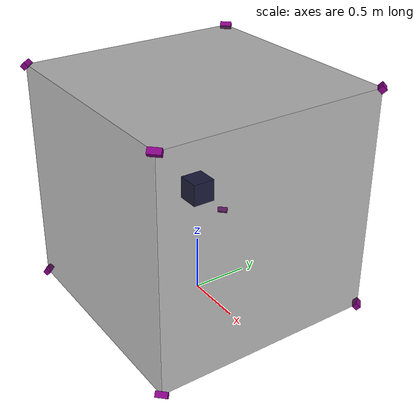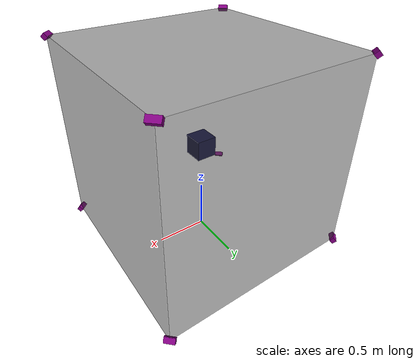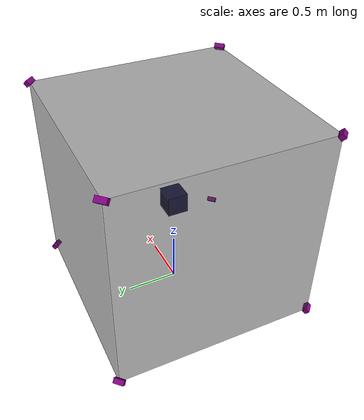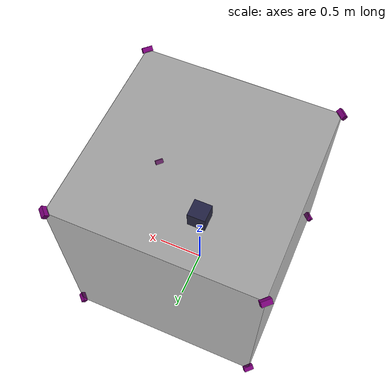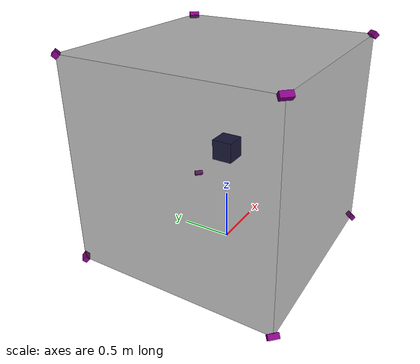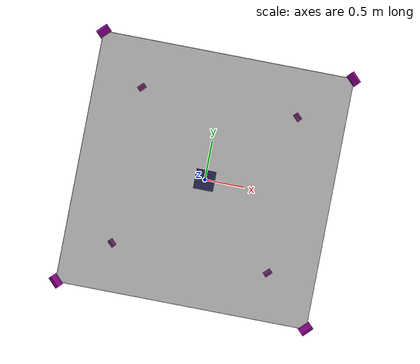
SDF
<?xml version="1.0"?>
<sdf version="1.5">
  <world name="default">
    <include>
      <uri>model://sun</uri>
    </include>
    <!-- Hole environment -->
    <model name="hole_environment">
      <static>true</static>
      <link name="environment">
        <collision name="leftwall_collision">
          <pose>0.0 1.0 1.0 0 0 0</pose>
          <geometry>
            <box>
              <size>2.0 0.01 2.0</size>
            </box>
          </geometry>
        </collision>
        <visual name="leftwall_visual">
          <pose>0.0 1.0 1.0 0 0 0</pose>
          <geometry>
            <box>
              <size>2.0 0.01 2.0</size>
            </box>
          </geometry>
          <transparency>0.5</transparency>
          <material>
            <ambient>0.25 0.25 0.25 1.0</ambient>
          </material>
        </visual>

        <collision name="rightwall_collision">
          <pose>0.0 -1.0 1.0 0 0 0</pose>
          <geometry>
            <box>
              <size>2.0 0.01 2.0</size>
            </box>
          </geometry>
        </collision>
        <visual name="rightwall_visual">
          <pose>0.0 -1.0 1.0 0 0 0</pose>
          <geometry>
            <box>
              <size>2.0 0.01 2.0</size>
            </box>
          </geometry>
          <transparency>0.5</transparency>
          <material>
            <ambient>0.25 0.25 0.25 1.0</ambient>
          </material>
        </visual>

        <collision name="frontwall_collision">
          <pose>1.0 0.0 1.0 0 0 0</pose>
          <geometry>
            <box>
              <size>0.01 2.0 2.0</size>
            </box>
          </geometry>
        </collision>
        <visual name="frontwall_visual">
          <pose>1.0 0.0 1.0 0 0 0</pose>
          <geometry>
            <box>
              <size>0.01 2.0 2.0</size>
            </box>
          </geometry>
          <transparency>0.5</transparency>
          <material>
            <ambient>0.25 0.25 0.25 1.0</ambient>
          </material>
        </visual>

        <collision name="backwall_collision">
          <pose>-1.0 0.0 1.0 0 0 0</pose>
          <geometry>
            <box>
              <size>0.01 2.0 2.0</size>
            </box>
          </geometry>
        </collision>
        <visual name="backwall_visual">
          <pose>-1.0 0.0 1.0 0 0 0</pose>
          <geometry>
            <box>
              <size>0.01 2.0 2.0</size>
            </box>
          </geometry>
          <transparency>0.5</transparency>
          <material>
            <ambient>0.25 0.25 0.25 1.0</ambient>
          </material>
        </visual>

        <collision name="topwall_collision">
          <pose>0.0 0.0 2.0 0 0 0</pose>
          <geometry>
            <box>
              <size>2.0 2.0 0.01</size>
            </box>
          </geometry>
        </collision>
        <visual name="topwall_visual">
          <pose>0.0 0.0 2.0 0 0 0</pose>
          <geometry>
            <box>
              <size>2.0 2.0 0.01</size>
            </box>
          </geometry>
          <transparency>0.5</transparency>
          <material>
            <ambient>0.25 0.25 0.25 1.0</ambient>
          </material>
        </visual>

        <collision name="bottomwall_collision">
          <pose>0.0 0.0 0.0 0 0 0</pose>
          <geometry>
            <box>
              <size>2.0 2.0 0.01</size>
            </box>
          </geometry>
        </collision>
        <visual name="bottomwall_visual">
          <pose>0.0 0.0 0.0 0 0 0</pose>
          <geometry>
            <box>
              <size>2.0 2.0 0.01</size>
            </box>
          </geometry>
          <transparency>0.5</transparency>
          <material>
            <ambient>0.25 0.25 0.25 1.0</ambient>
          </material>
        </visual>
      </link>
    </model>
    <!-- Ring of depth cameras -->
    <model name="cam1">
      <static>true</static>
      <pose>-1.0 -1.0 0.0 0 -0.785398 0.785398</pose>
      <link name="cam1_link">
        <collision name="cam1_collision">
          <geometry>
            <box>
              <size>0.05 0.1 0.05</size>
            </box>
          </geometry>
        </collision>
        <visual name="cam1_visual">
          <geometry>
            <box>
              <size>0.05 0.1 0.05</size>
            </box>
          </geometry>
          <material>
            <ambient>0.5 0.0 0.5 1.0</ambient>
          </material>
        </visual>
        <sensor name="cam1_camera" type="depth">
          <update_rate>10</update_rate>
          <camera>
            <horizontal_fov>1.047198</horizontal_fov>
            <image>
              <width>320</width>
              <height>240</height>
              <format>R8G8B8</format>
            </image>
            <clip>
              <near>0.05</near>
              <far>5</far>
            </clip>
          </camera>
          <plugin name="camera_plugin" filename="libgazebo_ros_openni_kinect.so">
            <baseline>0.2</baseline>
            <alwaysOn>true</alwaysOn>
            <updateRate>0.0</updateRate>
            <cameraName>cam1_ir</cameraName>
            <imageTopicName>/cam1/depth/image_raw</imageTopicName>
            <cameraInfoTopicName>/cam1/depth/camera_info</cameraInfoTopicName>
            <depthImageTopicName>/cam1/depth/image_raw</depthImageTopicName>
            <depthImageInfoTopicName>/cam1/depth/camera_info</depthImageInfoTopicName>
            <pointCloudTopicName>/cam1/depth/points</pointCloudTopicName>
            <frameName>cam1_link</frameName>
            <pointCloudCutoff>0.05</pointCloudCutoff>
            <distortionK1>0</distortionK1>
            <distortionK2>0</distortionK2>
            <distortionK3>0</distortionK3>
            <distortionT1>0</distortionT1>
            <distortionT2>0</distortionT2>
            <CxPrime>0</CxPrime>
            <Cx>0</Cx>
            <Cy>0</Cy>
            <focalLength>0</focalLength>
            <hackBaseline>0</hackBaseline>
          </plugin>
        </sensor>
      </link>
    </model>
    <model name="cam2">
      <static>true</static>
      <pose>-1.0 1.0 0.0 0 -0.785398 -0.785398</pose>
      <link name="cam2_link">
        <collision name="cam2_collision">
          <geometry>
            <box>
              <size>0.05 0.1 0.05</size>
            </box>
          </geometry>
        </collision>
        <visual name="cam2_visual">
          <geometry>
            <box>
              <size>0.05 0.1 0.05</size>
            </box>
          </geometry>
          <material>
            <ambient>0.5 0.0 0.5 1.0</ambient>
          </material>
        </visual>
        <sensor name="cam2_camera" type="depth">
          <update_rate>10</update_rate>
          <camera>
            <horizontal_fov>1.047198</horizontal_fov>
            <image>
              <width>320</width>
              <height>240</height>
              <format>R8G8B8</format>
            </image>
            <clip>
              <near>0.05</near>
              <far>5</far>
            </clip>
          </camera>
          <plugin name="camera_plugin" filename="libgazebo_ros_openni_kinect.so">
            <baseline>0.2</baseline>
            <alwaysOn>true</alwaysOn>
            <updateRate>0.0</updateRate>
            <cameraName>cam2_ir</cameraName>
            <imageTopicName>/cam2/depth/image_raw</imageTopicName>
            <cameraInfoTopicName>/cam2/depth/camera_info</cameraInfoTopicName>
            <depthImageTopicName>/cam2/depth/image_raw</depthImageTopicName>
            <depthImageInfoTopicName>/cam2/depth/camera_info</depthImageInfoTopicName>
            <pointCloudTopicName>/cam2/depth/points</pointCloudTopicName>
            <frameName>cam2_link</frameName>
            <pointCloudCutoff>0.05</pointCloudCutoff>
            <distortionK1>0</distortionK1>
            <distortionK2>0</distortionK2>
            <distortionK3>0</distortionK3>
            <distortionT1>0</distortionT1>
            <distortionT2>0</distortionT2>
            <CxPrime>0</CxPrime>
            <Cx>0</Cx>
            <Cy>0</Cy>
            <focalLength>0</focalLength>
            <hackBaseline>0</hackBaseline>
          </plugin>
        </sensor>
      </link>
    </model>
    <model name="cam3">
      <static>true</static>
      <pose>1.0 -1.0 0.0 0 -0.785398 2.35619</pose>
      <link name="cam3_link">
        <collision name="cam3_collision">
          <geometry>
            <box>
              <size>0.05 0.1 0.05</size>
            </box>
          </geometry>
        </collision>
        <visual name="cam3_visual">
          <geometry>
            <box>
              <size>0.05 0.1 0.05</size>
            </box>
          </geometry>
          <material>
            <ambient>0.5 0.0 0.5 1.0</ambient>
          </material>
        </visual>
        <sensor name="cam3_camera" type="depth">
          <update_rate>10</update_rate>
          <camera>
            <horizontal_fov>1.047198</horizontal_fov>
            <image>
              <width>320</width>
              <height>240</height>
              <format>R8G8B8</format>
            </image>
            <clip>
              <near>0.05</near>
              <far>5</far>
            </clip>
          </camera>
          <plugin name="camera_plugin" filename="libgazebo_ros_openni_kinect.so">
            <baseline>0.2</baseline>
            <alwaysOn>true</alwaysOn>
            <updateRate>0.0</updateRate>
            <cameraName>cam3_ir</cameraName>
            <imageTopicName>/cam3/depth/image_raw</imageTopicName>
            <cameraInfoTopicName>/cam3/depth/camera_info</cameraInfoTopicName>
            <depthImageTopicName>/cam3/depth/image_raw</depthImageTopicName>
            <depthImageInfoTopicName>/cam3/depth/camera_info</depthImageInfoTopicName>
            <pointCloudTopicName>/cam3/depth/points</pointCloudTopicName>
            <frameName>cam3_link</frameName>
            <pointCloudCutoff>0.05</pointCloudCutoff>
            <distortionK1>0</distortionK1>
            <distortionK2>0</distortionK2>
            <distortionK3>0</distortionK3>
            <distortionT1>0</distortionT1>
            <distortionT2>0</distortionT2>
            <CxPrime>0</CxPrime>
            <Cx>0</Cx>
            <Cy>0</Cy>
            <focalLength>0</focalLength>
            <hackBaseline>0</hackBaseline>
          </plugin>
        </sensor>
      </link>
    </model>
    <model name="cam4">
      <static>true</static>
      <pose>1.0 1.0 0.0 0 -0.785398 -2.35619</pose>
      <link name="cam4_link">
        <collision name="cam4_collision">
          <geometry>
            <box>
              <size>0.05 0.1 0.05</size>
            </box>
          </geometry>
        </collision>
        <visual name="cam4_visual">
          <geometry>
            <box>
              <size>0.05 0.1 0.05</size>
            </box>
          </geometry>
          <material>
            <ambient>0.5 0.0 0.5 1.0</ambient>
          </material>
        </visual>
        <sensor name="cam4_camera" type="depth">
          <update_rate>10</update_rate>
          <camera>
            <horizontal_fov>1.047198</horizontal_fov>
            <image>
              <width>320</width>
              <height>240</height>
              <format>R8G8B8</format>
            </image>
            <clip>
              <near>0.05</near>
              <far>5</far>
            </clip>
          </camera>
          <plugin name="camera_plugin" filename="libgazebo_ros_openni_kinect.so">
            <baseline>0.2</baseline>
            <alwaysOn>true</alwaysOn>
            <updateRate>0.0</updateRate>
            <cameraName>cam4_ir</cameraName>
            <imageTopicName>/cam4/depth/image_raw</imageTopicName>
            <cameraInfoTopicName>/cam4/depth/camera_info</cameraInfoTopicName>
            <depthImageTopicName>/cam4/depth/image_raw</depthImageTopicName>
            <depthImageInfoTopicName>/cam4/depth/camera_info</depthImageInfoTopicName>
            <pointCloudTopicName>/cam4/depth/points</pointCloudTopicName>
            <frameName>cam4_link</frameName>
            <pointCloudCutoff>0.05</pointCloudCutoff>
            <distortionK1>0</distortionK1>
            <distortionK2>0</distortionK2>
            <distortionK3>0</distortionK3>
            <distortionT1>0</distortionT1>
            <distortionT2>0</distortionT2>
            <CxPrime>0</CxPrime>
            <Cx>0</Cx>
            <Cy>0</Cy>
            <focalLength>0</focalLength>
            <hackBaseline>0</hackBaseline>
          </plugin>
        </sensor>
      </link>
    </model>
    <model name="cam5">
      <static>true</static>
      <pose>-1.0 -1.0 2.0 0 0.785398 0.785398</pose>
      <link name="cam5_link">
        <collision name="cam5_collision">
          <geometry>
            <box>
              <size>0.05 0.1 0.05</size>
            </box>
          </geometry>
        </collision>
        <visual name="cam5_visual">
          <geometry>
            <box>
              <size>0.05 0.1 0.05</size>
            </box>
          </geometry>
          <material>
            <ambient>0.5 0.0 0.5 1.0</ambient>
          </material>
        </visual>
        <sensor name="cam5_camera" type="depth">
          <update_rate>10</update_rate>
          <camera>
            <horizontal_fov>1.047198</horizontal_fov>
            <image>
              <width>320</width>
              <height>240</height>
              <format>R8G8B8</format>
            </image>
            <clip>
              <near>0.05</near>
              <far>5</far>
            </clip>
          </camera>
          <plugin name="camera_plugin" filename="libgazebo_ros_openni_kinect.so">
            <baseline>0.2</baseline>
            <alwaysOn>true</alwaysOn>
            <updateRate>0.0</updateRate>
            <cameraName>cam5_ir</cameraName>
            <imageTopicName>/cam5/depth/image_raw</imageTopicName>
            <cameraInfoTopicName>/cam5/depth/camera_info</cameraInfoTopicName>
            <depthImageTopicName>/cam5/depth/image_raw</depthImageTopicName>
            <depthImageInfoTopicName>/cam5/depth/camera_info</depthImageInfoTopicName>
            <pointCloudTopicName>/cam5/depth/points</pointCloudTopicName>
            <frameName>cam5_link</frameName>
            <pointCloudCutoff>0.05</pointCloudCutoff>
            <distortionK1>0</distortionK1>
            <distortionK2>0</distortionK2>
            <distortionK3>0</distortionK3>
            <distortionT1>0</distortionT1>
            <distortionT2>0</distortionT2>
            <CxPrime>0</CxPrime>
            <Cx>0</Cx>
            <Cy>0</Cy>
            <focalLength>0</focalLength>
            <hackBaseline>0</hackBaseline>
          </plugin>
        </sensor>
      </link>
    </model>
    <model name="cam6">
      <static>true</static>
      <pose>-1.0 1.0 2.0 0 0.785398 -0.785398</pose>
      <link name="cam6_link">
        <collision name="cam6_collision">
          <geometry>
            <box>
              <size>0.05 0.1 0.05</size>
            </box>
          </geometry>
        </collision>
        <visual name="cam6_visual">
          <geometry>
            <box>
              <size>0.05 0.1 0.05</size>
            </box>
          </geometry>
          <material>
            <ambient>0.5 0.0 0.5 1.0</ambient>
          </material>
        </visual>
        <sensor name="cam6_camera" type="depth">
          <update_rate>10</update_rate>
          <camera>
            <horizontal_fov>1.047198</horizontal_fov>
            <image>
              <width>320</width>
              <height>240</height>
              <format>R8G8B8</format>
            </image>
            <clip>
              <near>0.05</near>
              <far>5</far>
            </clip>
          </camera>
          <plugin name="camera_plugin" filename="libgazebo_ros_openni_kinect.so">
            <baseline>0.2</baseline>
            <alwaysOn>true</alwaysOn>
            <updateRate>0.0</updateRate>
            <cameraName>cam6_ir</cameraName>
            <imageTopicName>/cam6/depth/image_raw</imageTopicName>
            <cameraInfoTopicName>/cam6/depth/camera_info</cameraInfoTopicName>
            <depthImageTopicName>/cam6/depth/image_raw</depthImageTopicName>
            <depthImageInfoTopicName>/cam6/depth/camera_info</depthImageInfoTopicName>
            <pointCloudTopicName>/cam6/depth/points</pointCloudTopicName>
            <frameName>cam6_link</frameName>
            <pointCloudCutoff>0.05</pointCloudCutoff>
            <distortionK1>0</distortionK1>
            <distortionK2>0</distortionK2>
            <distortionK3>0</distortionK3>
            <distortionT1>0</distortionT1>
            <distortionT2>0</distortionT2>
            <CxPrime>0</CxPrime>
            <Cx>0</Cx>
            <Cy>0</Cy>
            <focalLength>0</focalLength>
            <hackBaseline>0</hackBaseline>
          </plugin>
        </sensor>
      </link>
    </model>
    <model name="cam7">
      <static>true</static>
      <pose>1.0 -1.0 2.0 0 0.785398 2.35619</pose>
      <link name="cam7_link">
        <collision name="cam7_collision">
          <geometry>
            <box>
              <size>0.05 0.1 0.05</size>
            </box>
          </geometry>
        </collision>
        <visual name="cam7_visual">
          <geometry>
            <box>
              <size>0.05 0.1 0.05</size>
            </box>
          </geometry>
          <material>
            <ambient>0.5 0.0 0.5 1.0</ambient>
          </material>
        </visual>
        <sensor name="cam7_camera" type="depth">
          <update_rate>10</update_rate>
          <camera>
            <horizontal_fov>1.047198</horizontal_fov>
            <image>
              <width>320</width>
              <height>240</height>
              <format>R8G8B8</format>
            </image>
            <clip>
              <near>0.05</near>
              <far>5</far>
            </clip>
          </camera>
          <plugin name="camera_plugin" filename="libgazebo_ros_openni_kinect.so">
            <baseline>0.2</baseline>
            <alwaysOn>true</alwaysOn>
            <updateRate>0.0</updateRate>
            <cameraName>cam7_ir</cameraName>
            <imageTopicName>/cam7/depth/image_raw</imageTopicName>
            <cameraInfoTopicName>/cam7/depth/camera_info</cameraInfoTopicName>
            <depthImageTopicName>/cam7/depth/image_raw</depthImageTopicName>
            <depthImageInfoTopicName>/cam7/depth/camera_info</depthImageInfoTopicName>
            <pointCloudTopicName>/cam7/depth/points</pointCloudTopicName>
            <frameName>cam7_link</frameName>
            <pointCloudCutoff>0.05</pointCloudCutoff>
            <distortionK1>0</distortionK1>
            <distortionK2>0</distortionK2>
            <distortionK3>0</distortionK3>
            <distortionT1>0</distortionT1>
            <distortionT2>0</distortionT2>
            <CxPrime>0</CxPrime>
            <Cx>0</Cx>
            <Cy>0</Cy>
            <focalLength>0</focalLength>
            <hackBaseline>0</hackBaseline>
          </plugin>
        </sensor>
      </link>
    </model>
    <model name="cam8">
      <static>true</static>
      <pose>1.0 1.0 2.0 0 0.785398 -2.35619</pose>
      <link name="cam8_link">
        <collision name="cam8_collision">
          <geometry>
            <box>
              <size>0.05 0.1 0.05</size>
            </box>
          </geometry>
        </collision>
        <visual name="cam8_visual">
          <geometry>
            <box>
              <size>0.05 0.1 0.05</size>
            </box>
          </geometry>
          <material>
            <ambient>0.5 0.0 0.5 1.0</ambient>
          </material>
        </visual>
        <sensor name="cam8_camera" type="depth">
          <update_rate>10</update_rate>
          <camera>
            <horizontal_fov>1.047198</horizontal_fov>
            <image>
              <width>320</width>
              <height>240</height>
              <format>R8G8B8</format>
            </image>
            <clip>
              <near>0.05</near>
              <far>5</far>
            </clip>
          </camera>
          <plugin name="camera_plugin" filename="libgazebo_ros_openni_kinect.so">
            <baseline>0.2</baseline>
            <alwaysOn>true</alwaysOn>
            <updateRate>0.0</updateRate>
            <cameraName>cam8_ir</cameraName>
            <imageTopicName>/cam8/depth/image_raw</imageTopicName>
            <cameraInfoTopicName>/cam8/depth/camera_info</cameraInfoTopicName>
            <depthImageTopicName>/cam8/depth/image_raw</depthImageTopicName>
            <depthImageInfoTopicName>/cam8/depth/camera_info</depthImageInfoTopicName>
            <pointCloudTopicName>/cam8/depth/points</pointCloudTopicName>
            <frameName>cam8_link</frameName>
            <pointCloudCutoff>0.05</pointCloudCutoff>
            <distortionK1>0</distortionK1>
            <distortionK2>0</distortionK2>
            <distortionK3>0</distortionK3>
            <distortionT1>0</distortionT1>
            <distortionT2>0</distortionT2>
            <CxPrime>0</CxPrime>
            <Cx>0</Cx>
            <Cy>0</Cy>
            <focalLength>0</focalLength>
            <hackBaseline>0</hackBaseline>
          </plugin>
        </sensor>
      </link>
    </model>
    <!-- Simple flying box  -->
    <model name="flying_box">
      <pose>0 0 1.0 0 0 0</pose>
      <link name="flying_box">
        <inertial>
          <mass>10.0</mass>
        </inertial>
        <gravity>0</gravity>
        <collision name="collision">
          <geometry>
            <box>
              <size>0.2 0.2 0.2</size>
            </box>
          </geometry>
        </collision>
        <visual name="visual">
          <geometry>
            <box>
              <size>0.2 0.2 0.2</size>
            </box>
          </geometry>
          <material>
            <ambient>0.0 0.0 0.25 1.0</ambient>
          </material>
        </visual>
      </link>
      <!-- Plugins that describe the thrusters -->
      <plugin name="generic_gazebo_wrench_thruster_plugin" filename="libgeneric_gazebo_wrench_thruster_plugin.so">
        <thruster_body>flying_box</thruster_body>
        <thruster_name>thruster</thruster_name>
      </plugin>
      <plugin name="flying_box_position" filename="libgazebo_ros_p3d.so">
        <frameName>world</frameName>
        <bodyName>flying_box</bodyName>
        <topicName>flying_box/pose</topicName>
        <updateRate>200.0</updateRate>
      </plugin>
    </model>
  </world>
</sdf>
